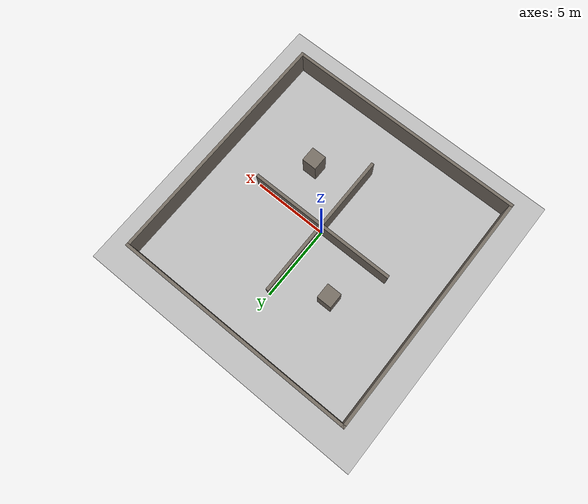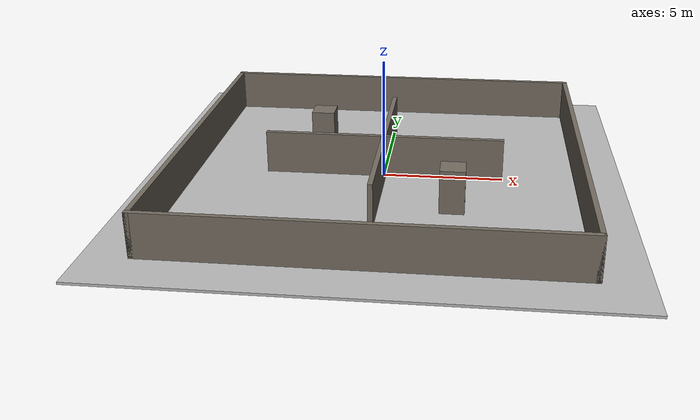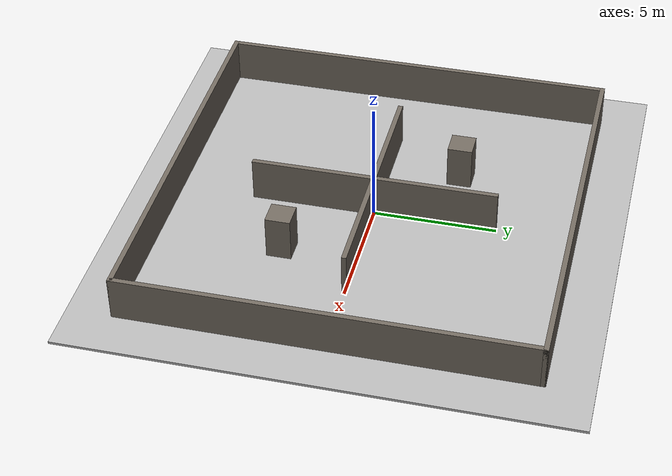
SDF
<sdf version="1.7">
 <world name="nav_dynamic">
  <physics type="ode"><max_step_size>0.01</max_step_size></physics>
  <light name="sun" type="directional">
   <pose>0 0 10 0 0 0</pose>
   <diffuse>0.8 0.8 0.8 1</diffuse>
   <specular>0.3 0.3 0.3 1</specular>
   <attenuation>
    <range>1000</range>
    <constant>0.9</constant>
    <linear>0.01</linear>
    <quadratic>0.001</quadratic>
   </attenuation>
   <direction>-0.5 0.3 -1.0</direction>
  </light>
  <model name="ground_plane">
   <static>true</static>
   <pose>0 0 -0.05 0 0 0</pose>
   <link name="link">
    <collision name="collision"><geometry><box><size>20.0 20.0 0.1</size></box></geometry></collision>
    <visual name="visual"><geometry><box><size>20.0 20.0 0.1</size></box></geometry></visual>
   </link>
  </model>
  <model name="obstacle_00">
   <static>true</static>
   <pose>0.000 -8.100 0.900 0 0 0</pose>
   <link name="link">
    <collision name="collision"><geometry><box><size>16.400 0.200 1.800</size></box></geometry></collision>
    <visual name="visual">
     <geometry><box><size>16.400 0.200 1.800</size></box></geometry>
     <material><ambient>0.45 0.42 0.38 1</ambient><diffuse>0.45 0.42 0.38 1</diffuse></material>
    </visual>
   </link>
  </model>
  <model name="obstacle_01">
   <static>true</static>
   <pose>0.000 8.100 0.900 0 0 0</pose>
   <link name="link">
    <collision name="collision"><geometry><box><size>16.400 0.200 1.800</size></box></geometry></collision>
    <visual name="visual">
     <geometry><box><size>16.400 0.200 1.800</size></box></geometry>
     <material><ambient>0.45 0.42 0.38 1</ambient><diffuse>0.45 0.42 0.38 1</diffuse></material>
    </visual>
   </link>
  </model>
  <model name="obstacle_02">
   <static>true</static>
   <pose>-8.100 0.000 0.900 0 0 0</pose>
   <link name="link">
    <collision name="collision"><geometry><box><size>0.200 16.400 1.800</size></box></geometry></collision>
    <visual name="visual">
     <geometry><box><size>0.200 16.400 1.800</size></box></geometry>
     <material><ambient>0.45 0.42 0.38 1</ambient><diffuse>0.45 0.42 0.38 1</diffuse></material>
    </visual>
   </link>
  </model>
  <model name="obstacle_03">
   <static>true</static>
   <pose>8.100 0.000 0.900 0 0 0</pose>
   <link name="link">
    <collision name="collision"><geometry><box><size>0.200 16.400 1.800</size></box></geometry></collision>
    <visual name="visual">
     <geometry><box><size>0.200 16.400 1.800</size></box></geometry>
     <material><ambient>0.45 0.42 0.38 1</ambient><diffuse>0.45 0.42 0.38 1</diffuse></material>
    </visual>
   </link>
  </model>
  <model name="obstacle_04">
   <static>true</static>
   <pose>0.000 0.000 0.900 0 0 0</pose>
   <link name="link">
    <collision name="collision"><geometry><box><size>0.200 10.000 1.800</size></box></geometry></collision>
    <visual name="visual">
     <geometry><box><size>0.200 10.000 1.800</size></box></geometry>
     <material><ambient>0.45 0.42 0.38 1</ambient><diffuse>0.45 0.42 0.38 1</diffuse></material>
    </visual>
   </link>
  </model>
  <model name="obstacle_05">
   <static>true</static>
   <pose>0.000 0.000 0.900 0 0 0</pose>
   <link name="link">
    <collision name="collision"><geometry><box><size>10.000 0.200 1.800</size></box></geometry></collision>
    <visual name="visual">
     <geometry><box><size>10.000 0.200 1.800</size></box></geometry>
     <material><ambient>0.45 0.42 0.38 1</ambient><diffuse>0.45 0.42 0.38 1</diffuse></material>
    </visual>
   </link>
  </model>
  <model name="obstacle_06">
   <static>true</static>
   <pose>-3.000 3.000 0.900 0 0 0</pose>
   <link name="link">
    <collision name="collision"><geometry><box><size>1.000 1.000 1.800</size></box></geometry></collision>
    <visual name="visual">
     <geometry><box><size>1.000 1.000 1.800</size></box></geometry>
     <material><ambient>0.45 0.42 0.38 1</ambient><diffuse>0.45 0.42 0.38 1</diffuse></material>
    </visual>
   </link>
  </model>
  <model name="obstacle_07">
   <static>true</static>
   <pose>3.000 -3.000 0.900 0 0 0</pose>
   <link name="link">
    <collision name="collision"><geometry><box><size>1.000 1.000 1.800</size></box></geometry></collision>
    <visual name="visual">
     <geometry><box><size>1.000 1.000 1.800</size></box></geometry>
     <material><ambient>0.45 0.42 0.38 1</ambient><diffuse>0.45 0.42 0.38 1</diffuse></material>
    </visual>
   </link>
  </model>
 </world>
</sdf>
